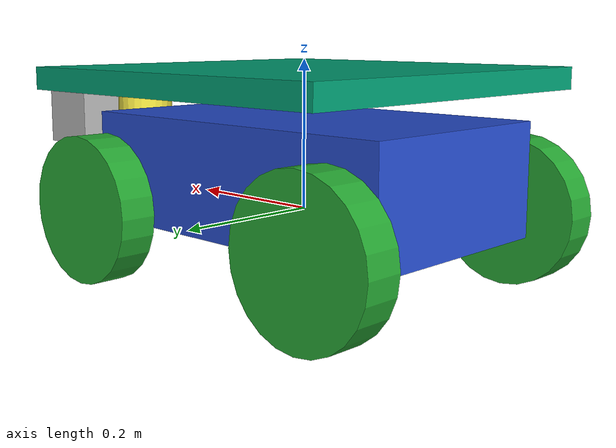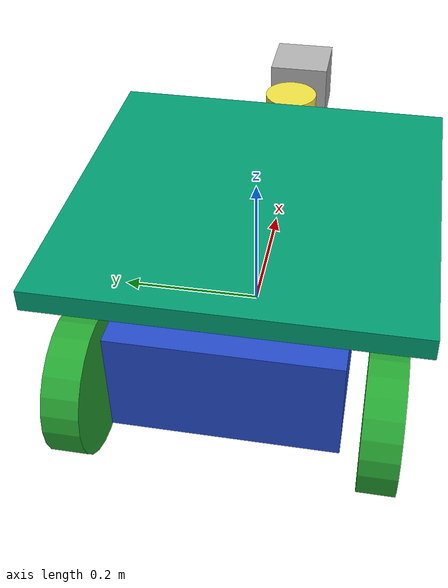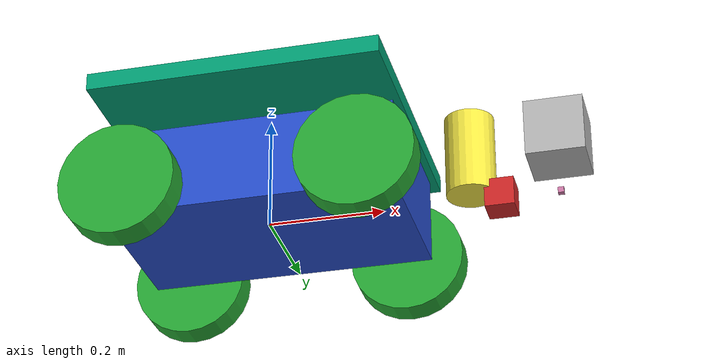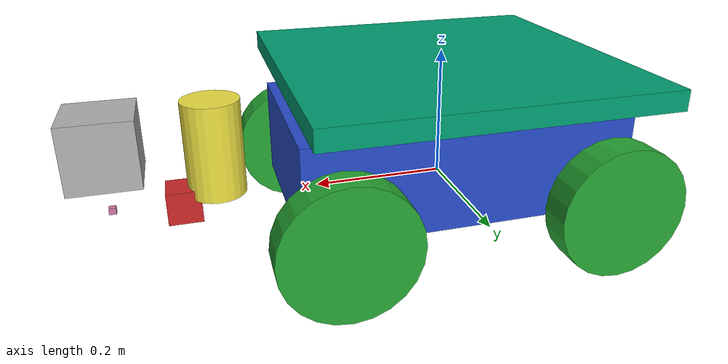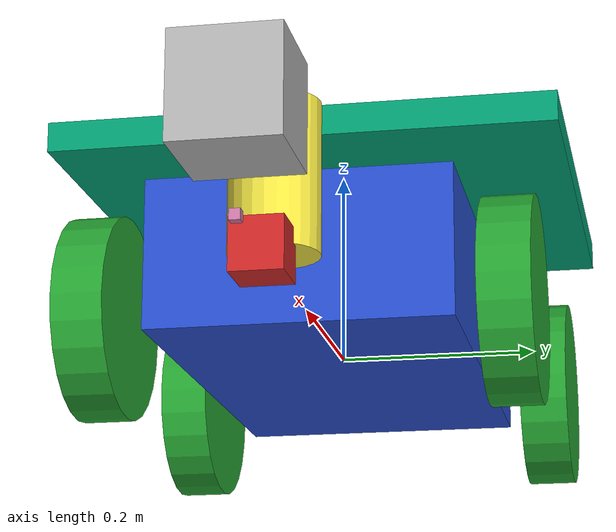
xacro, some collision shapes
<?xml version='1.0'?>

<robot name="atom" xmlns:xacro="http://www.ros.org/wiki/xacro">
	<xacro:property name="robot_name" value="atom" />
	<xacro:property name="robot_chassis_mass" value="15"/>
	<xacro:property name="robot_chassis_length" value="0.2"/>
	<xacro:property name="robot_chassis_radius" value="0.25"/>
	<xacro:property name="robot_caster_wheel_radius" value="0.05"/>
	<xacro:property name="robot_caster_wheel_radius_collision" value="0.0499"/>

	<xacro:property name="robot_wheel_mass" value="5"/>
	<xacro:property name="robot_wheel_length" value="0.05"/>
	<xacro:property name="robot_wheel_radius" value="0.1"/>

	<xacro:property name="camera_mass" value="0.1"/>
	<xacro:property name="hokoyu_mass" value="1e-5"/>

	<xacro:arg name="gpu" default="true"/>
	<xacro:property name="gpu" value="$(arg gpu)" />
	<xacro:arg name="organize_cloud" default="true"/>
	<xacro:property name="organize_cloud" value="$(arg organize_cloud)" />

	<xacro:include filename="$(find atom)/urdf/amazon_warehouse_robot.transmission.xacro"/>

	<!-- Make Chassis of Bot -->
	<link name="chassis">
		<pose>0 0 0.1 0 0 0</pose>

		<inertial>
			<mass value="${robot_chassis_mass}"/>
      		<origin xyz="0.0 0 0" rpy=" 0 0 0"/>

      		<inertia
      			ixx="0.147116667" ixy="0" ixz="0"
      			iyy="0.334951167" iyz="0"
      			izz="0.3978345"
      		/>
		</inertial>

		<collision name="collision">
			<origin xyz="0 0 0.05" rpy=" 0 0 0"/>
			<geometry>
				<box size="0.5 0.3 0.15"/>
			</geometry>
		</collision>

		<visual name="chassis_visual">
			<origin xyz="0 0 0.05" rpy=" 0 0 0"/>
			<geometry>
				<box size="0.5 0.3 0.15"/>
			</geometry>

		</visual>

	</link>

	<!-- Right Wheel Back -->
	<link name="right_wheel_back">
		<inertial>
			<mass value="${robot_wheel_mass}"/>
			<origin xyz="0 0 0" rpy="0 1.5707 1.5707"/>
			<inertia
				ixx="0.1" ixy="0.0" ixz="0.0"
				iyy="0.1" iyz="0.0"
				izz="0.1"
			/>
		</inertial>

		<visual>
			<origin xyz="0 0 0" rpy="0 1.5707 1.5707"/>
			<geometry>
				<cylinder radius="${robot_wheel_radius}" length="${robot_wheel_length}"/>
			</geometry>
		</visual>

		<collision>
			<origin xyz="0 0 0" rpy="0 1.5707 1.5707"/>
			<geometry>
				<cylinder radius="${robot_wheel_radius}" length="${robot_wheel_length}"/>
			</geometry>
		</collision>

	</link>

	<!-- Right Wheel Front-->
	<link name="right_wheel_front">
		<inertial>
			<mass value="${robot_wheel_mass}"/>
			<origin xyz="0 0 0" rpy="0 1.5707 1.5707"/>
			<inertia
				ixx="0.1" ixy="0.0" ixz="0.0"
				iyy="0.1" iyz="0.0"
				izz="0.1"
			/>
		</inertial>

		<visual>
			<origin xyz="0 0 0" rpy="0 1.5707 1.5707"/>
			<geometry>
				<cylinder radius="${robot_wheel_radius}" length="${robot_wheel_length}"/>
			</geometry>
		</visual>

		<collision>
			<origin xyz="0 0 0" rpy="0 1.5707 1.5707"/>
			<geometry>
				<cylinder radius="${robot_wheel_radius}" length="${robot_wheel_length}"/>
			</geometry>
		</collision>

	</link>

	<!-- Left wheel Back-->
	<link name="left_wheel_back">
		<inertial>
			<mass value="${robot_wheel_mass}"/>
			<origin xyz="0 0 0" rpy="0 1.5707 1.5707"/>
			<inertia
				ixx="0.1" ixy="0.0" ixz="0.0"
				iyy="0.1" iyz="0.0"
				izz="0.1"
			/>
		</inertial>

		<visual>
			<origin xyz="0 0 0" rpy="0 1.5707 1.5707"/>
			<geometry>
				<cylinder radius="${robot_wheel_radius}" length="${robot_wheel_length}"/>
			</geometry>
		</visual>

		<collision>
			<origin xyz="0 0 0" rpy="0 1.5707 1.5707"/>
			<geometry>
				<cylinder radius="${robot_wheel_radius}" length="${robot_wheel_length}"/>
			</geometry>
		</collision>

	</link>

	<!-- Left wheel Front-->
	<link name="left_wheel_front">
		<inertial>
			<mass value="${robot_wheel_mass}"/>
			<origin xyz="0 0 0" rpy="0 1.5707 1.5707"/>
			<inertia
				ixx="0.1" ixy="0.0" ixz="0.0"
				iyy="0.1" iyz="0.0"
				izz="0.1"
			/>
		</inertial>

		<visual>
			<origin xyz="0 0 0" rpy="0 1.5707 1.5707"/>
			<geometry>
				<cylinder radius="${robot_wheel_radius}" length="${robot_wheel_length}"/>
			</geometry>
		</visual>

		<collision>
			<origin xyz="0 0 0" rpy="0 1.5707 1.5707"/>
			<geometry>
				<cylinder radius="${robot_wheel_radius}" length="${robot_wheel_length}"/>
			</geometry>
		</collision>

	</link>

	<!-- Camera -->
	<link name="camera">
		<inertial>
			<mass value="${camera_mass}"/>
			<origin xyz="0 0 0" rpy="0 0 0"/>
			<inertia
		        ixx="1e-6" ixy="0.0" ixz="0.0"
		        iyy="1e-6" iyz="0.0"
		        izz="1e-6"
		      />
		</inertial>

		<visual>
			<origin xyz="0 0 0" rpy="0 0 0"/>
			<geometry>
				<box size="0.05 0.05 0.05"/>
			</geometry>
		</visual>

		<collision>
			<origin xyz="0 0 0" rpy="0 0 0"/>
			<geometry>
				<box size="0.05 0.05 0.05"/>
			</geometry>
		</collision>
	</link>

	<link name="imu_link">
    <visual>
      <geometry>
        <box size="0.01 0.01 0.01"/>
      </geometry>
    </visual>
    <collision>
      <geometry>
        <box size="0.01 0.01 0.01"/>
      </geometry>
    </collision>
    <inertial>
      <mass value="1e-5" />
      <origin xyz="0 0 0" rpy="0 0 0"/>
      <inertia ixx="1e-6" ixy="0" ixz="0" iyy="1e-6" iyz="0" izz="1e-6" />
    </inertial>
  </link>

	<!-- Hokuyo Lidar -->
	<link name="hokuyo">
		<inertial>
			<mass value="${hokoyu_mass}"/>
			<origin xyz="0 0 0" rpy="0 0 0"/>

			<inertia
		        ixx="1e-6" ixy="0.0" ixz="0.0"
		        iyy="1e-6" iyz="0.0"
		        izz="1e-6"
		      />
		</inertial>

		<visual>
			<origin xyz="0 0 0" rpy="0 0 0"/>
			<geometry>
				<mesh filename="package://atom/meshes/hokuyo.dae"/>
			</geometry>
		</visual>

		<collision>
			<origin xyz="0 0 0" rpy="0 0 0"/>
			<geometry>
				<box size="0.1 0.1 0.1"/>
			</geometry>
		</collision>
	</link>

	<!-- Project center to the ground -->
	<link name="robot_footprint"></link>

	<!-- Define Joints -->

	<!-- Right Wheel Joint Back-->
	<joint type="continuous" name="right_wheel_hinge_back">
	    <origin xyz="-0.2 -0.20 0" rpy="0 0 0" />
	    <parent link="chassis"/>
	    <child link="right_wheel_back" />
	    <axis xyz="0 1 0" rpy="0 0 0" />
	    <limit effort="10000" velocity="1000" />
	    <dynamics damping="1.0" friction="1.0" />
	</joint>

	<!-- Right Wheel Joint Front-->
	<joint type="continuous" name="right_wheel_hinge_front">
	    <origin xyz="0.2 -0.20 0" rpy="0 0 0" />
	    <parent link="chassis"/>
	    <child link="right_wheel_front" />
	    <axis xyz="0 1 0" rpy="0 0 0" />
	    <limit effort="10000" velocity="1000" />
	    <dynamics damping="1.0" friction="1.0" />
	</joint>

	<!-- Left Wheel Joint Back-->
	<joint type="continuous" name="left_wheel_hinge_back">
	    <origin xyz="-0.2 0.20 0" rpy="0 0 0" />
	    <parent link="chassis"/>
	    <child link="left_wheel_back" />
	    <axis xyz="0 1 0" rpy="0 0 0" />
	    <limit effort="10000" velocity="1000" />
	    <dynamics damping="1.0" friction="1.0" />
	</joint>

	<!-- Left Wheel Joint Front-->
	<joint type="continuous" name="left_wheel_hinge_front">
	    <origin xyz="0.2 0.20 0" rpy="0 0 0" />
	    <parent link="chassis"/>
	    <child link="left_wheel_front" />
	    <axis xyz="0 1 0" rpy="0 0 0" />
	    <limit effort="10000" velocity="1000" />
	    <dynamics damping="1.0" friction="1.0" />
	</joint>

	<!-- Camera Joint -->
	<joint name="camera_joint" type="fixed">
		<origin xyz="0.40 0 0" rpy="0 0 0" />
		<parent link="chassis"/>
		<child link="camera" />
		<axis xyz="0 1 0"/>
	</joint>

	<joint name="imu_joint" type="fixed">
		<origin xyz="0.50 0 0" rpy="0 0 0" />
		<parent link="chassis"/>
		<child link="imu_link" />
		<axis xyz="0 1 0"/>
	</joint>

	<!-- Hokoyu Joint -->
	<joint name="hokuyo_joint" type="fixed">
	    <origin xyz="0.5 0 0.1" rpy="0 0 0" />
	    <parent link="chassis"/>
	    <child link="hokuyo" />
	    <axis xyz="0 1 0"/>
	</joint>

	<joint name="robot_footprint_joint" type="fixed">
		<origin xyz="0 0 0" rpy="0 0 0" />
		<parent link="robot_footprint"/>
		<child link="chassis" />
	</joint>

	<!--Robot lift links -->
	<link name="link_platform_mid">
    <origin xyz="0 0 0.0" rpy="0 0 0"/>

    <visual>
      <geometry>
        <box size="0.02 0.02 0.02" />
      </geometry>

    </visual>
    <collision>
      <geometry>
        <box size="0.02 0.02 0.02" />
      </geometry>
    </collision>

    <inertial>
      <mass value="1"/>
      <inertia
              ixx="1.0" ixy="0.0" ixz="0.0"
              iyy="1.0" iyz="0.0"
              izz="1.0"/>
    </inertial>
  </link>

  <joint name="platform_joint" type="fixed">
    <parent link="chassis" />
    <child link="link_platform_mid" />
    <origin xyz="0.0 0 0.1" rpy="0. 0. 0."/>
  </joint>

  <link name="lift_link">
    <origin xyz="0 0 0.0" rpy="0 0 0"/>

    <visual>
      <geometry>
        <box size="0.50 0.50 0.03" />
      </geometry>

    </visual>

    <collision>

      <geometry>
        <box size="0.50 0.50 0.03" />
      </geometry>

	  <surface>
        <friction>
          <ode><mu>100000.0</mu><mu2>100000.0</mu2></ode>
        </friction>
                <contact>
                  <ode><min_depth>0.003</min_depth></ode>
                </contact>
      </surface>

    </collision>

    <inertial>
      <mass value="1"/>
      <inertia
              ixx="1.0" ixy="0.0" ixz="0.0"
              iyy="1.0" iyz="0.0"
              izz="1.0"/>
    </inertial>
  </link>

  <joint name="lift_joint" type="prismatic" >
  <origin xyz="0 0 0.075" rpy="0. 0. 0."/>
    <child link="lift_link" />
    <parent link="link_platform_mid" />
    <axis xyz="0 0 1" rpy="0 0 0"/>
    <limit effort="10000.0" lower="-0.05" upper="0.15" velocity="0.1"/>
  </joint>

	<!-- Color of bot -->
	<gazebo reference="left_wheel_front">
		<material>Gazebo/Green</material>
		<kp>1000000.0</kp> <!-- kp and kd for rubber -->
		<kd>100.0</kd>
		<mu1>1.0</mu1>
		<mu2>1.0</mu2>
		<maxVel>1.0</maxVel>
		<minDepth>0.00</minDepth>
	</gazebo>

	<gazebo reference="left_wheel_back">
		<material>Gazebo/Green</material>
		<kp>1000000.0</kp> <!-- kp and kd for rubber -->
		<kd>100.0</kd>
		<mu1>1.0</mu1>
		<mu2>1.0</mu2>
		<maxVel>1.0</maxVel>
		<minDepth>0.00</minDepth>
	</gazebo>

	<gazebo reference="right_wheel_front">
		<material>Gazebo/Green</material>
		<kp>1000000.0</kp> <!-- kp and kd for rubber -->
		<kd>100.0</kd>
		<mu1>1.0</mu1>
		<mu2>1.0</mu2>
		<maxVel>1.0</maxVel>
		<minDepth>0.00</minDepth>
	</gazebo>
	<gazebo reference="right_wheel_back">
		<material>Gazebo/Green</material>
		<kp>1000000.0</kp> <!-- kp and kd for rubber -->
		<kd>100.0</kd>
		<mu1>1.0</mu1>
		<mu2>1.0</mu2>
		<maxVel>1.0</maxVel>
		<minDepth>0.00</minDepth>
	</gazebo>

	<gazebo reference="camera">
		<material>Gazebo/Red</material>
	</gazebo>

	<gazebo reference="chassis">
		<material>Gazebo/Blue</material>
	</gazebo>

	<!-- Motor, Camera and Lidar Simulation -->
	<xacro:include filename="$(find atom)/urdf/atom.gazebo" />

    <xacro:include filename="$(find velodyne_description)/urdf/HDL-32E.urdf.xacro"/>
  <xacro:HDL-32E parent="chassis" name="velodyne" topic="/velodyne_points" organize_cloud="${organize_cloud}" hz="10" samples="5000" gpu="${gpu}">
    <origin xyz="0.35 0 0.01" rpy="0 0 0" />
  </xacro:HDL-32E>

</robot>

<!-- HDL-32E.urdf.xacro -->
<robot xmlns:xacro="http://www.ros.org/wiki/xacro" name="HDL-32E">
  <xacro:property name="M_PI" value="3.1415926535897931" />
  <xacro:macro name="HDL-32E" params="*origin parent:=base_link name:=velodyne tf_prefix:='' topic:=/velodyne_points organize_cloud:=false hz:=10 lasers:=32 samples:=2187 collision_range:=0.3 min_range:=0.9 max_range:=130.0 noise:=0.008 min_angle:=-${M_PI} max_angle:=${M_PI} gpu:=false">

    <joint name="${name}_base_mount_joint" type="fixed">
      <xacro:insert_block name="origin" />
      <parent link="${parent}"/>
      <child link="${name}_base_link"/>
    </joint>

    <link name="${name}_base_link">
      <inertial>
        <mass value="1.0"/>
        <origin xyz="0 0 0.07212"/>
        <inertia ixx="${(1.0 * (3.0*0.04267*0.04267 + 0.14424*0.14424)) / 12.0}" ixy="0" ixz="0"
          iyy="${(1.0 * (3.0*0.04267*0.04267 + 0.14424*0.14424)) / 12.0}" iyz="0"
          izz="${0.5 * 1.0 * (0.04267*0.04267)}"/>
      </inertial>
      <visual>
        <geometry>
          <mesh filename="package://velodyne_description/meshes/HDL32E_base.dae" />
        </geometry>
      </visual>
      <collision>
        <origin rpy="0 0 0" xyz="0 0 0.07212"/>
        <geometry>
          <cylinder radius="0.04267" length="0.14424"/>
        </geometry>
      </collision>
    </link>

    <joint name="${name}_base_scan_joint" type="fixed" >
      <origin xyz="0 0 0.09081" rpy="0 0 0" />
      <parent link="${name}_base_link" />
      <child link="${name}"/>
    </joint>

    <link name="${name}">
      <inertial>
        <mass value="0.01"/>
        <origin xyz="0 0 0"/>
        <inertia ixx="1e-7" ixy="0" ixz="0" iyy="1e-7" iyz="0" izz="1e-7"/>
      </inertial>
      <visual>
        <origin xyz="0 0 -0.09081" rpy="0 0 0" />
        <geometry>
          <mesh filename="package://velodyne_description/meshes/HDL32E_scan.dae" />
        </geometry>
      </visual>
      <collision>
        <geometry>
          <sphere radius="0"/>
        </geometry>
      </collision>
    </link>

    <!-- Gazebo requires the velodyne_gazebo_plugins package -->
    <gazebo reference="${name}">
      <xacro:if value="${gpu}">
        <sensor type="gpu_ray" name="${name}-HDL32E">
          <pose>0 0 0 0 0 0</pose>
          <visualize>false</visualize>
          <update_rate>${hz}</update_rate>
          <ray>
            <scan>
              <horizontal>
                <samples>${samples}</samples>
                <resolution>1</resolution>
                <min_angle>${min_angle}</min_angle>
                <max_angle>${max_angle}</max_angle>
              </horizontal>
              <vertical>
                <samples>${lasers}</samples>
                <resolution>1</resolution>
                <min_angle>-${5.0*M_PI/180.0}</min_angle>
                <max_angle> ${85.0*M_PI/180.0}</max_angle>
              </vertical>
            </scan>
            <range>
              <min>${collision_range}</min>
              <max>${max_range+1}</max>
              <resolution>0.001</resolution>
            </range>
            <noise>
              <type>gaussian</type>
              <mean>0.0</mean>
              <stddev>0.0</stddev>
            </noise>
          </ray>
          <plugin name="gazebo_ros_laser_controller" filename="libgazebo_ros_velodyne_laser.so">
            <ros>
              <namespace>/${name}</namespace>
              <remapping>~/out:=${topic}</remapping>
            </ros>
            <tf_prefix>${tf_prefix}</tf_prefix>
            <frame_name>${name}</frame_name>
            <organize_cloud>${organize_cloud}</organize_cloud>
            <min_range>${min_range}</min_range>
            <max_range>${max_range}</max_range>
            <gaussian_noise>${noise}</gaussian_noise>
          </plugin>
        </sensor>
      </xacro:if>
      <xacro:unless value="${gpu}">
        <sensor type="ray" name="${name}-HDL32E">
          <pose>0 0 0 0 0 0</pose>
          <visualize>false</visualize>
          <update_rate>${hz}</update_rate>
          <ray>
            <scan>
              <horizontal>
                <samples>${samples}</samples>
                <resolution>1</resolution>
                <min_angle>${min_angle}</min_angle>
                <max_angle>${max_angle}</max_angle>
              </horizontal>
              <vertical>
                <samples>${lasers}</samples>
                <resolution>1</resolution>
                <min_angle>-${5.0*M_PI/180.0}</min_angle>
                <max_angle> ${85.0*M_PI/180.0}</max_angle>
              </vertical>
            </scan>
            <range>
              <min>${collision_range}</min>
              <max>${max_range+1}</max>
              <resolution>0.001</resolution>
            </range>
            <noise>
              <type>gaussian</type>
              <mean>0.0</mean>
              <stddev>0.0</stddev>
            </noise>
          </ray>
          <plugin name="gazebo_ros_laser_controller" filename="libgazebo_ros_velodyne_laser.so">
            <ros>
              <namespace>/${name}</namespace>
              <remapping>~/out:=${topic}</remapping>
            </ros>
            <tf_prefix>${tf_prefix}</tf_prefix>
            <frame_name>${name}</frame_name>
            <organize_cloud>${organize_cloud}</organize_cloud>
            <min_range>${min_range}</min_range>
            <max_range>${max_range}</max_range>
            <gaussian_noise>${noise}</gaussian_noise>
          </plugin>
        </sensor>
      </xacro:unless>
    </gazebo>

  </xacro:macro>
</robot>
